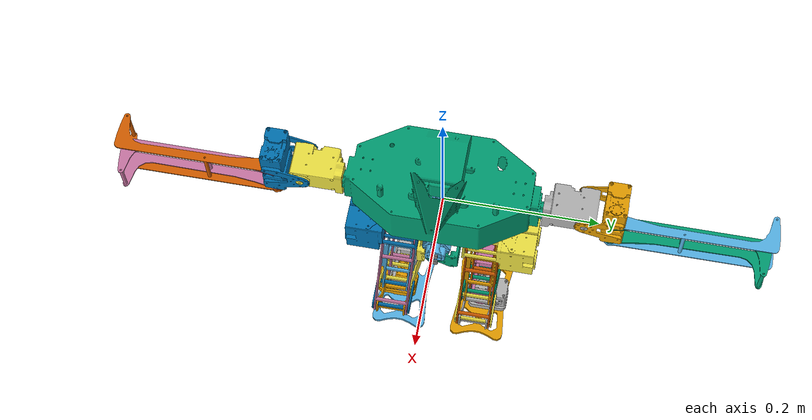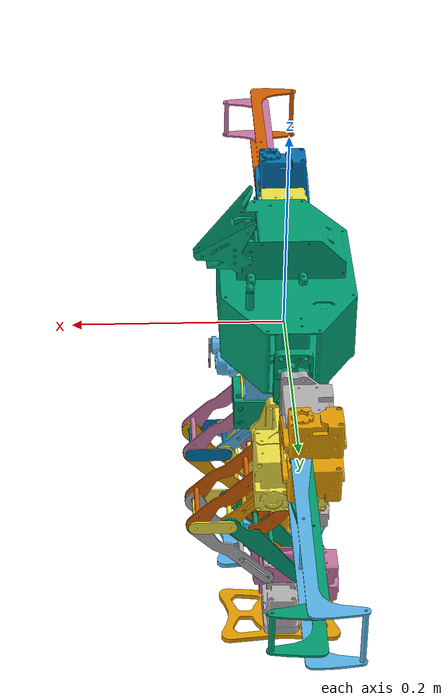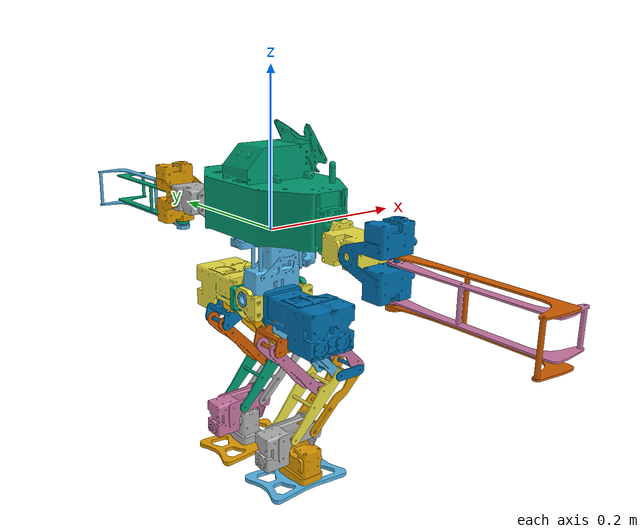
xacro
<?xml version="1.0"?>
<robot name="kuroko" xmlns:xacro="http://www.ros.org/wiki/xacro">
  <xacro:arg name="gazebo" default="false"/>
  <xacro:arg name="box_visual" default="false"/>
  <xacro:arg name="gazebo_motor_model" default="dc"/>
  <xacro:arg name="gazebo_hw_interface" default="position"/>

  <xacro:property name="XACRO_DIR" value="/home/nyx/lib/isaaclab/kuroko_ros/kuroko_description/xacro" />
  <xacro:property name="MESH_DIR" value="/home/nyx/lib/isaaclab/kuroko_ros/kuroko_description/meshes" />

  <xacro:include filename="${XACRO_DIR}/physics/box_physics.xacro"/>
  <xacro:include filename="${XACRO_DIR}/physics/gazebo_passive_joint.xacro"/>
  <xacro:include filename="${XACRO_DIR}/kuroko/parts/body.xacro"/>
  <xacro:include filename="${XACRO_DIR}/kuroko/transmission/body.gazebo"/>
  <xacro:include filename="${XACRO_DIR}/kuroko/parts/arm_r.xacro"/>
  <xacro:include filename="${XACRO_DIR}/kuroko/transmission/arm_r.gazebo"/>
  <xacro:include filename="${XACRO_DIR}/kuroko/parts/arm_l.xacro"/>
  <xacro:include filename="${XACRO_DIR}/kuroko/transmission/arm_l.gazebo"/>
  <xacro:include filename="${XACRO_DIR}/kuroko/parts/leg_r.xacro"/>
  <xacro:include filename="${XACRO_DIR}/kuroko/transmission/leg_r.gazebo"/>
  <xacro:include filename="${XACRO_DIR}/kuroko/parts/leg_l.xacro"/>
  <xacro:include filename="${XACRO_DIR}/kuroko/transmission/leg_l.gazebo"/>
  <xacro:include filename="${XACRO_DIR}/sensors/range/tfluna.xacro"/>
  <xacro:include filename="${XACRO_DIR}/sensors/imu/imu_n100mini.xacro"/>
  <xacro:include filename="${XACRO_DIR}/sensors/camera/usb_camera.xacro"/>

  <!-- MACRO:Loading Gazebo Controllers for joints -->
  <xacro:macro name="gazebo_plugin_xacro" params="gazebo_motor_model">
    <xacro:if value="${gazebo_motor_model=='default'}">
      <gazebo>
        <plugin name="gazebo_ros_control" filename="libgazebo_ros_control.so">
          <robotNamespace>kuroko</robotNamespace>
          <robotSimType>gazebo_ros_control/DefaultRobotHWSim</robotSimType>
          <legacyModeNS>true</legacyModeNS>
        </plugin>
      </gazebo>
    </xacro:if>
    <xacro:if value="${gazebo_motor_model=='dc'}">
      <gazebo>
        <plugin name="gazebo_ros_control" filename="libgazebo_dc_motor.so">
          <robotNamespace>kuroko</robotNamespace>
          <robotSimType>gazebo_dc_motor/DefaultRobotHWSim</robotSimType>
          <legacyModeNS>false</legacyModeNS>
        </plugin>
      </gazebo>
    </xacro:if>
  </xacro:macro>

  <!-- MACRO:Setting up a Robot Model -->
  <xacro:macro name="kuroko_xacro" params="gazebo box_visual gazebo_hw_interface">
    <link name="body_link"/>
    <joint name="root_joint" type="fixed">
      <parent link="body_link"/>
      <child link="waist_link"/>
      <origin xyz="0 0 0" rpy="0 0 0"/>
    </joint>
    <xacro:body_xacro box_visual="$(arg box_visual)"/>
    <xacro:body_gazebo gazebo_hw_interface="${gazebo_hw_interface}"/>
    <xacro:arm_r_xacro box_visual="$(arg box_visual)"/>
    <xacro:arm_r_gazebo gazebo_hw_interface="${gazebo_hw_interface}"/>
    <xacro:arm_l_xacro box_visual="$(arg box_visual)"/>
    <xacro:arm_l_gazebo gazebo_hw_interface="${gazebo_hw_interface}"/>
    <xacro:leg_r_xacro gazebo="$(arg gazebo)" box_visual="$(arg box_visual)"/>
    <xacro:leg_r_gazebo gazebo_hw_interface="${gazebo_hw_interface}"/>
    <xacro:leg_l_xacro gazebo="$(arg gazebo)" box_visual="$(arg box_visual)"/>
    <xacro:leg_l_gazebo gazebo_hw_interface="${gazebo_hw_interface}"/>
    <xacro:imu_n100mini parent="waist_link" name="imu">
      <origin xyz="-0.04 0 -0.01" rpy="0 0 0"/>
    </xacro:imu_n100mini>
    <xacro:usb_camera parent="waist_link" name="camera">
      <origin xyz="0.07 0 -0.026" rpy="0 0 0"/>
    </xacro:usb_camera>
    <xacro:tfluna parent="waist_link" name="tfluna" ros_topic="/kuroko/sensors/range">
      <origin xyz="0.07 0 -0.044" rpy="0 0 0"/>
    </xacro:tfluna>
  </xacro:macro>

  <!-- Load Macros -->
  <xacro:kuroko_xacro gazebo="$(arg gazebo)" box_visual="$(arg box_visual)"
    gazebo_hw_interface="$(arg gazebo_hw_interface)"/>
  <xacro:gazebo_plugin_xacro gazebo_motor_model="$(arg gazebo_motor_model)"/>

</robot>

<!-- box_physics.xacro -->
<robot xmlns:xacro="http://www.ros.org/wiki/xacro">
  <xacro:macro name="box_inertial" params="xyz:='0 0 0' rpy:='0 0 0' size mass inertia_min:=0.0001">
    <xacro:property name="d" value="${float(size.split()[0])}"/>
    <xacro:property name="w" value="${float(size.split()[1])}"/>
    <xacro:property name="h" value="${float(size.split()[2])}"/>
    <xacro:property name="ixx" value="${mass * (w ** 2 + h ** 2) / 12}"/>
    <xacro:property name="iyy" value="${mass * (d ** 2 + h ** 2) / 12}"/>
    <xacro:property name="izz" value="${mass * (w ** 2 + d ** 2) / 12}"/>
    <xacro:if value="${int(inertia_min/ixx)}">
      <xacro:property name="ixx" value="${inertia_min}"/>
    </xacro:if>
    <xacro:if value="${int(inertia_min/iyy)}">
      <xacro:property name="iyy" value="${inertia_min}"/>
    </xacro:if>
    <xacro:if value="${int(inertia_min/izz)}">
      <xacro:property name="izz" value="${inertia_min}"/>
    </xacro:if>
    <inertial>
      <origin xyz="${xyz}" rpy="${rpy}"/>
      <mass value="${mass}"/>
      <inertia ixx="${ixx}"
        ixy="0.0" iyy="${iyy}"
        ixz="0.0" iyz="0.0" izz="${izz}"/>
    </inertial>
  </xacro:macro>
  <xacro:macro name="box_collision" params="xyz:='0 0 0' rpy:='0 0 0' size">
    <collision>
      <origin xyz="${xyz}" rpy="${rpy}"/>
      <geometry>
        <box size="${size}"/>
      </geometry>
    </collision>
  </xacro:macro>
  <xacro:macro name="box_visual" params="xyz:='0 0 0' rpy:='0 0 0' size material_name:='gray' color:='0.5 0.5 0.5 1'">
    <visual>
      <origin xyz="${xyz}" rpy="${rpy}"/>
      <geometry>
        <box size="${size}"/>
      </geometry>
      <material name="${material_name}">
        <color rgba="${color}"/>
      </material>
    </visual>
  </xacro:macro>
</robot>

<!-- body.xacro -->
<robot xmlns:xacro="http://www.ros.org/wiki/xacro">
  <xacro:macro name="body_xacro" params="box_visual:=false">
    <!-- waist -->
    <link name="waist_link">
      <xacro:unless value="$(arg box_visual)">
        <visual>
          <origin xyz="0 0 0" rpy="0 0 0"/>
          <geometry>
            <mesh filename="${MESH_DIR}/kuroko/stl/waist.stl"/>
          </geometry>
        </visual>
      </xacro:unless>
      <xacro:if value="$(arg box_visual)">
        <xacro:box_visual xyz="0.0084 0.0000 -0.0483" rpy="0 0 0" size="0.1247 0.0560 0.0965"/>
      </xacro:if>
      <xacro:box_collision xyz="0.0084 0.0000 -0.0483" rpy="0 0 0" size="0.1247 0.0560 0.0965"/>
      <xacro:box_inertial xyz="0.0084 0.0000 -0.0483" rpy="0 0 0" size="0.1247 0.0560 0.0965" mass="0.388"/>
    </link>
    <!-- Joint1 -->
    <joint name="chest" type="revolute">
      <parent link="waist_link"/>
      <child link="chest_link"/>
      <origin xyz="0 0 0" rpy="0 0 0"/>
      <axis xyz="0 0 1"/>
      <limit effort="3.1" lower="-3.14" upper="3.14" velocity="6.5"/>
      <dynamics damping="0.477" friction="0.0"/>
    </joint>
    <!-- chest -->
    <link name="chest_link">
      <xacro:unless value="$(arg box_visual)">
        <visual>
          <origin xyz="0 0 0" rpy="0 0 0"/>
          <geometry>
            <mesh filename="${MESH_DIR}/kuroko/stl/chest.stl"/>
          </geometry>
        </visual>
      </xacro:unless>
      <xacro:if value="$(arg box_visual)">
        <xacro:box_visual xyz="0.0120 0.0000 0.0635" rpy="0 0 0" size="0.1480 0.2560 0.1364"/>
      </xacro:if>
      <xacro:box_collision xyz="0.0120 0.0000 0.0635" rpy="0 0 0" size="0.1480 0.2560 0.1364"/>
      <xacro:box_inertial xyz="0.0120 0.0000 0.0635" rpy="0 0 0" size="0.1480 0.2560 0.1364" mass="0.806"/>
    </link>
  </xacro:macro>
</robot>

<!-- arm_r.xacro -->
<robot xmlns:xacro="http://www.ros.org/wiki/xacro">
  <xacro:macro name="arm_r_xacro" params="box_visual:=false">
    <!-- Link conencts from body. Shoulder first. -->
    <joint name="shoulder_r_pitch" type="revolute">
      <parent link="chest_link"/>
      <child link="shoulder_r_pitch_link"/>
      <origin xyz="0 -0.128 0.01275" rpy="0 0 0"/>
      <axis xyz="0 -1 0"/>
      <limit effort="3.1" lower="-3.14" upper="3.14" velocity="6.5"/>
      <dynamics damping="0.477" friction="0.0"/>
    </joint>
    <link name="shoulder_r_pitch_link">
      <xacro:unless value="$(arg box_visual)">
        <visual>
          <origin xyz="0 0 0" rpy="0 0 0"/>
          <geometry>
            <mesh filename="${MESH_DIR}/kuroko/stl/shoulder_r_pitch.stl"/>
          </geometry>
        </visual>
      </xacro:unless>
      <xacro:if value="$(arg box_visual)">
        <xacro:box_visual xyz="-0.0096 -0.0340 0.0000" rpy="0 0 0" size="0.0513 0.0680 0.0475"/>
      </xacro:if>
      <xacro:box_collision xyz="-0.0096 -0.0340 0.0000" rpy="0 0 0" size="0.0513 0.0680 0.0475"/>
      <xacro:box_inertial xyz="-0.0096 -0.0340 0.0000" rpy="0 0 0" size="0.0513 0.0680 0.0475" mass="0.165"/>
    </link>
    <joint name="shoulder_r_roll" type="revolute">
      <parent link="shoulder_r_pitch_link"/>
      <child link="shoulder_r_roll_link"/>
      <origin xyz="0 -0.05425 0" rpy="-1.5708 0 0"/>
      <axis xyz="1 0 0"/>
      <limit effort="8.9" lower="-3.14" upper="3.14" velocity="6.9"/>
      <dynamics damping="1.29" friction="0.0"/>
    </joint>
    <link name="shoulder_r_roll_link">
      <xacro:unless value="$(arg box_visual)">
        <visual>
          <origin xyz="0 0 0" rpy="0 0 0"/>
          <geometry>
            <mesh filename="${MESH_DIR}/kuroko/stl/shoulder_r_roll.stl"/>
          </geometry>
        </visual>
      </xacro:unless>
      <xacro:if value="$(arg box_visual)">
        <xacro:box_visual xyz="-0.0108 0.0000 -0.0186" rpy="0 0 0" size="0.0530 0.0860 0.0633"/>
      </xacro:if>
      <xacro:box_collision xyz="-0.0108 0.0000 -0.0186" rpy="0 0 0" size="0.0530 0.0860 0.0633"/>
      <xacro:box_inertial xyz="-0.0108 0.0000 -0.0186" rpy="0 0 0" size="0.0530 0.0860 0.0633" mass="0.183"/>
    </link>
    <joint name="elbow_r_front" type="revolute">
      <parent link="shoulder_r_roll_link"/>
      <child link="elbow_r_front_link"/>
      <origin xyz="0 0.023 -0.036" rpy="0 0 0"/>
      <axis xyz="0 1 0"/>
      <limit effort="3.1" lower="-2.6180" upper="2.6180" velocity="6.5"/>
      <dynamics damping="0.477" friction="0.0"/>
    </joint>
    <link name="elbow_r_front_link">
      <xacro:unless value="$(arg box_visual)">
        <visual>
          <origin xyz="0 0 0" rpy="0 0 0"/>
          <geometry>
            <mesh filename="${MESH_DIR}/kuroko/stl/elbow_r_front.stl"/>
          </geometry>
        </visual>
      </xacro:unless>
      <xacro:if value="$(arg box_visual)">
        <xacro:box_visual xyz="0.0043 0 -0.104" rpy="0 0 0" size="0.01085 0.058 0.208"/>
        <xacro:box_visual xyz="-0.0206 0 -0.201" rpy="0 0 0" size="0.039 0.058 0.014"/>
      </xacro:if>
      <xacro:box_collision xyz="0.0043 0 -0.104" rpy="0 0 0" size="0.01085 0.058 0.208"/>
      <xacro:box_collision xyz="-0.0206 0 -0.201" rpy="0 0 0" size="0.039 0.058 0.014"/>
      <xacro:box_inertial xyz="0.0043 0 -0.104" rpy="0 0 0" size="0.044 0.058 0.208" mass="0.032"/>
    </link>
    <joint name="elbow_r_rear" type="revolute">
      <parent link="shoulder_r_roll_link"/>
      <child link="elbow_r_rear_link"/>
      <origin xyz="0 0.024 -0.036" rpy="0 0 0"/>
      <axis xyz="0 -1 0"/>
      <limit effort="3.1" lower="-2.6180" upper="2.6180" velocity="6.5"/>
      <dynamics damping="0.477" friction="0.0"/>
    </joint>
    <link name="elbow_r_rear_link">
      <xacro:unless value="$(arg box_visual)">
        <visual>
          <origin xyz="0 0 0" rpy="0 0 0"/>
          <geometry>
            <mesh filename="${MESH_DIR}/kuroko/stl/elbow_r_rear.stl"/>
          </geometry>
        </visual>
      </xacro:unless>
      <xacro:if value="$(arg box_visual)">
        <xacro:box_visual xyz="-0.0043 0 -0.1" rpy="0 0 0" size="0.01085 0.044 0.2"/>
        <xacro:box_visual xyz="0.0206 0 -0.193" rpy="0 0 0" size="0.039 0.044 0.014"/>
      </xacro:if>
      <xacro:box_collision xyz="-0.0043 0 -0.1" rpy="0 0 0" size="0.01085 0.044 0.2"/>
      <xacro:box_collision xyz="0.0206 0 -0.193" rpy="0 0 0" size="0.039 0.044 0.014"/>
      <xacro:box_inertial xyz="-0.0043 0 -0.1" rpy="0 0 0" size="0.044 0.044 0.2" mass="0.031"/>
    </link>
  </xacro:macro>
</robot>

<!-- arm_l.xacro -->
<robot xmlns:xacro="http://www.ros.org/wiki/xacro">
  <xacro:macro name="arm_l_xacro" params="box_visual:=false">
    <!-- Link conencts from body. Shoulder first. -->
    <joint name="shoulder_l_pitch" type="revolute">
      <parent link="chest_link"/>
      <child link="shoulder_l_pitch_link"/>
      <origin xyz="0 0.128 0.01275" rpy="0 0 0"/>
      <axis xyz="0 1 0"/>
      <limit effort="3.1" lower="-3.14" upper="3.14" velocity="6.5"/>
      <dynamics damping="0.477" friction="0.0"/>
    </joint>
    <link name="shoulder_l_pitch_link">
      <xacro:unless value="$(arg box_visual)">
        <visual>
          <origin xyz="0 0 0" rpy="0 0 0"/>
          <geometry>
            <mesh filename="${MESH_DIR}/kuroko/stl/shoulder_l_pitch.stl"/>
          </geometry>
        </visual>
      </xacro:unless>
      <xacro:if value="$(arg box_visual)">
        <xacro:box_visual xyz="-0.0096 0.0340 0.0000" rpy="0 0 0" size="0.0513 0.0680 0.0475"/>
      </xacro:if>
      <xacro:box_collision xyz="-0.0096 0.0340 0.0000" rpy="0 0 0" size="0.0513 0.0680 0.0475"/>
      <xacro:box_inertial xyz="-0.0096 0.0340 0.0000" rpy="0 0 0" size="0.0513 0.0680 0.0475" mass="0.165"/>
    </link>
    <joint name="shoulder_l_roll" type="revolute">
      <parent link="shoulder_l_pitch_link"/>
      <child link="shoulder_l_roll_link"/>
      <origin xyz="0 0.05425 0" rpy="1.5708 0 0"/>
      <axis xyz="1 0 0"/>
      <limit effort="8.9" lower="-3.14" upper="3.14" velocity="6.9"/>
      <dynamics damping="1.29" friction="0.0"/>
    </joint>
    <link name="shoulder_l_roll_link">
      <xacro:unless value="$(arg box_visual)">
        <visual>
          <origin xyz="0 0 0" rpy="0 0 0"/>
          <geometry>
            <mesh filename="${MESH_DIR}/kuroko/stl/shoulder_l_roll.stl"/>
          </geometry>
        </visual>
      </xacro:unless>
      <xacro:if value="$(arg box_visual)">
        <xacro:box_visual xyz="-0.0108 0.0000 -0.0186" rpy="0 0 0" size="0.0530 0.0860 0.0633"/>
      </xacro:if>
      <xacro:box_collision xyz="-0.0108 0.0000 -0.0186" rpy="0 0 0" size="0.0530 0.0860 0.0633"/>
      <xacro:box_inertial xyz="-0.0108 0.0000 -0.0186" rpy="0 0 0" size="0.0530 0.0860 0.0633" mass="0.183"/>
    </link>
    <joint name="elbow_l_front" type="revolute">
      <parent link="shoulder_l_roll_link"/>
      <child link="elbow_l_front_link"/>
      <origin xyz="0 -0.023 -0.036" rpy="0 0 0"/>
      <axis xyz="0 -1 0"/>
      <limit effort="3.1" lower="-2.6180" upper="2.6180" velocity="6.5"/>
      <dynamics damping="0.477" friction="0.0"/>
    </joint>
    <link name="elbow_l_front_link">
      <xacro:unless value="$(arg box_visual)">
        <visual>
          <origin xyz="0 0 0" rpy="0 0 0"/>
          <geometry>
            <mesh filename="${MESH_DIR}/kuroko/stl/elbow_l_front.stl"/>
          </geometry>
        </visual>
      </xacro:unless>
      <xacro:if value="$(arg box_visual)">
        <xacro:box_visual xyz="0.0043 0 -0.104" rpy="0 0 0" size="0.01085 0.058 0.208"/>
        <xacro:box_visual xyz="-0.0206 0 -0.201" rpy="0 0 0" size="0.039 0.058 0.014"/>
      </xacro:if>
      <xacro:box_collision xyz="0.0043 0 -0.104" rpy="0 0 0" size="0.01085 0.058 0.208"/>
      <xacro:box_collision xyz="-0.0206 0 -0.201" rpy="0 0 0" size="0.039 0.058 0.014"/>
      <xacro:box_inertial xyz="0.0043 0 -0.104" rpy="0 0 0" size="0.044 0.058 0.208" mass="0.032"/>
    </link>
    <joint name="elbow_l_rear" type="revolute">
      <parent link="shoulder_l_roll_link"/>
      <child link="elbow_l_rear_link"/>
      <origin xyz="0 -0.024 -0.036" rpy="0 0 0"/>
      <axis xyz="0 1 0"/>
      <limit effort="3.1" lower="-2.6180" upper="2.6180" velocity="6.5"/>
      <dynamics damping="0.477" friction="0.0"/>
    </joint>
    <link name="elbow_l_rear_link">
      <xacro:unless value="$(arg box_visual)">
        <visual>
          <origin xyz="0 0 0" rpy="0 0 0"/>
          <geometry>
            <mesh filename="${MESH_DIR}/kuroko/stl/elbow_l_rear.stl"/>
          </geometry>
        </visual>
      </xacro:unless>
      <xacro:if value="$(arg box_visual)">
        <xacro:box_visual xyz="-0.0043 0 -0.1" rpy="0 0 0" size="0.01085 0.044 0.2"/>
        <xacro:box_visual xyz="0.0206 0 -0.193" rpy="0 0 0" size="0.039 0.044 0.014"/>
      </xacro:if>
      <xacro:box_collision xyz="-0.0043 0 -0.1" rpy="0 0 0" size="0.01085 0.044 0.2"/>
      <xacro:box_collision xyz="0.0206 0 -0.193" rpy="0 0 0" size="0.039 0.044 0.014"/>
      <xacro:box_inertial xyz="-0.0043 0 -0.1" rpy="0 0 0" size="0.044 0.044 0.2" mass="0.031"/>
    </link>
  </xacro:macro>
</robot>

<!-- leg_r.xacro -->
<robot xmlns:xacro="http://www.ros.org/wiki/xacro">
  <xacro:macro name="leg_r_xacro" params="gazebo:=false box_visual:=false">
    <!-- Link conencts from body. Hip first. -->
    <joint name="hip_r_roll" type="revolute">
      <parent link="waist_link"/>
      <child link="hip_r_roll_link"/>
      <origin xyz="0 0 -0.08425" rpy="0 0 0"/>
      <axis xyz="1 0 0"/>
      <limit effort="3.1" lower="-0.5550" upper="1.8640" velocity="6.5"/>
      <dynamics damping="0.477" friction="0.0"/>
    </joint>
    <link name="hip_r_roll_link">
      <xacro:unless value="$(arg box_visual)">
        <visual>
          <origin xyz="0 0 0" rpy="0 0 0"/>
          <geometry>
            <mesh filename="${MESH_DIR}/kuroko/stl/hip_r_roll.stl"/>
          </geometry>
        </visual>
      </xacro:unless>
      <xacro:if value="$(arg box_visual)">
        <xacro:box_visual xyz="0.00125 -0.0065 -0.004125" rpy="0 0 0" size="0.092 0.041 0.03625"/>
      </xacro:if>
      <xacro:box_collision xyz="0.00125 -0.0065 -0.004125" rpy="0 0 0" size="0.092 0.041 0.03625"/>
      <xacro:box_inertial xyz="0.00125 -0.0065 -0.004125" rpy="0 0 0" size="0.092 0.041 0.03625"
        mass="0.026"/>
    </link>
    <joint name="hip_r_pitch" type="revolute">
      <parent link="hip_r_roll_link"/>
      <child link="hip_r_pitch_link"/>
      <origin xyz="0 -0.027 0" rpy="0 0 0"/>
      <axis xyz="0 -1 0"/>
      <limit effort="3.1" lower="-3.1" upper="3.1" velocity="6.5"/>
      <dynamics damping="0.477" friction="0.0"/>
    </joint>
    <link name="hip_r_pitch_link">
      <xacro:unless value="$(arg box_visual)">
        <visual>
          <origin xyz="0 0 0" rpy="0 0 0"/>
          <geometry>
            <mesh filename="${MESH_DIR}/kuroko/stl/hip_r_pitch.stl"/>
          </geometry>
        </visual>
      </xacro:unless>
      <xacro:if value="$(arg box_visual)">
        <xacro:box_visual xyz="-0.00175 -0.049 -0.015" rpy="0 0 0" size="0.067 0.098 0.0585"/>
      </xacro:if>
      <xacro:box_collision xyz="-0.00175 -0.049 -0.015" rpy="0 0 0" size="0.067 0.098 0.0585"/>
      <xacro:box_inertial xyz="-0.00175 -0.049 -0.015" rpy="0 0 0" size="0.067 0.098 0.0585"
        mass="0.478"/>
    </link>

    <joint name="shin_r_active" type="revolute">
      <parent link="hip_r_pitch_link"/>
      <child link="shin_r_active_link"/>
      <origin xyz="-0.0185 -0.02925 -0.0305" rpy="0 1.047197551 0"/>
      <axis xyz="0 1 0"/>
      <limit effort="8.9" lower="-1.8588" upper="0.4974" velocity="6.9"/>
      <dynamics damping="1.29" friction="0.0"/>
    </joint>
    <link name="shin_r_active_link">
      <xacro:unless value="$(arg box_visual)">
        <visual>
          <origin xyz="0 0 0" rpy="0 0 0"/>
          <geometry>
            <mesh filename="${MESH_DIR}/kuroko/stl/shin_r_active.stl"/>
          </geometry>
        </visual>
      </xacro:unless>
      <xacro:if value="$(arg box_visual)">
        <xacro:box_visual xyz="-0.004745 0 -0.015" rpy="0 0 0" size="0.02349 0.0445 0.044"/>
      </xacro:if>
      <xacro:box_collision xyz="-0.004745 0 -0.015" rpy="0 0 0" size="0.02349 0.0445 0.044"/>
      <xacro:box_inertial xyz="-0.004745 0 -0.015" rpy="0 0 0" size="0.02349 0.0445 0.044"
        mass="0.008"/>
    </link>

    <joint name="thigh_r_active" type="revolute">
      <parent link="hip_r_pitch_link"/>
      <child link="thigh_r_active_link"/>
      <origin xyz="0.015 -0.02925 -0.0305" rpy="0 -0.785398163 0"/>
      <axis xyz="0 1 0"/>
      <limit effort="8.9" lower="-0.4974" upper="1.8588" velocity="6.9"/>
      <dynamics damping="1.29" friction="0.0"/>
    </joint>
    <link name="thigh_r_active_link">
      <xacro:unless value="$(arg box_visual)">
        <visual>
          <origin xyz="0 0 0" rpy="0 0 0"/>
          <geometry>
            <mesh filename="${MESH_DIR}/kuroko/stl/thigh_r_active.stl"/>
          </geometry>
        </visual>
      </xacro:unless>
      <xacro:if value="$(arg box_visual)">
        <xacro:box_visual xyz="0 0 -0.05" rpy="0 0 0" size="0.014 0.0445 0.114"/>
      </xacro:if>
      <xacro:box_collision xyz="0 0 -0.05" rpy="0 0 0" size="0.014 0.0445 0.114"/>
      <xacro:box_inertial xyz="0 0 -0.05" rpy="0 0 0" size="0.014 0.0445 0.114" mass="0.012"/>
    </link>
    <xacro:unless value="$(arg gazebo)">
      <joint name="shin_r_front_mimic" type="revolute">
        <parent link="thigh_r_active_link"/>
        <child link="shin_r_front_mimic_link"/>
        <origin xyz="0 0 -0.1" rpy="0 0.785398163 0"/>
        <axis xyz="0 1 0"/>
        <limit effort="0" lower="-3.1416" upper="3.1416" velocity="1000"/>
        <dynamics damping="0.0" friction="0.0"/>
        <mimic joint="thigh_r_active" multiplier="-1" offset="0"/>
      </joint>
      <link name="shin_r_front_mimic_link"/>
      <joint name="shin_r_front_passive" type="revolute">
        <parent link="shin_r_front_mimic_link"/>
        <child link="shin_r_front_passive_link"/>
        <origin xyz="0 0 0" rpy="0 0.785398163 0"/>
        <axis xyz="0 1 0"/>
        <limit effort="0" lower="-3.1416" upper="3.1416" velocity="1000"/>
        <dynamics damping="0.0" friction="0.0"/>
        <mimic joint="shin_r_active" multiplier="1" offset="0"/>
      </joint>
    </xacro:unless>
    <xacro:if value="$(arg gazebo)">
      <joint name="shin_r_front_passive" type="revolute">
        <parent link="thigh_r_active_link"/>
        <child link="shin_r_front_passive_link"/>
        <origin xyz="0 0 -0.1" rpy="0 1.570796327 0"/>
        <axis xyz="0 1 0"/>
        <limit effort="0" lower="-1.570796327" upper="0.9948" velocity="1000.0"/>
        <dynamics damping="0.0" friction="0.0"/>
      </joint>
    </xacro:if>
    <link name="shin_r_front_passive_link">
      <xacro:unless value="$(arg box_visual)">
        <visual>
          <origin xyz="0 0 0" rpy="0 0 0"/>
          <geometry>
            <mesh filename="${MESH_DIR}/kuroko/stl/shin_r_front_passive.stl"/>
          </geometry>
        </visual>
      </xacro:unless>
      <xacro:if value="$(arg box_visual)">
        <xacro:box_visual xyz="0 0 -0.05" rpy="0 0 0" size="0.014 0.0445 0.114"/>
      </xacro:if>
      <xacro:box_collision xyz="0 0 -0.05" rpy="0 0 0" size="0.014 0.0385 0.114"/>
      <xacro:box_inertial xyz="0 0 -0.05" rpy="0 0 0" size="0.014 0.0385 0.114" mass="0.013"/>
    </link>

    <joint name="thigh_r_middle_passive" type="revolute">
      <parent link="hip_r_pitch_link"/>
      <child link="thigh_r_middle_passive_link"/>
      <origin xyz="-0.0185 -0.02925 -0.0305" rpy="0 -0.785398163 0"/>
      <axis xyz="0 1 0"/>
      <limit effort="0" lower="-0.4974" upper="1.8588" velocity="1000"/>
      <dynamics damping="0" friction="0"/>
      <mimic joint="thigh_r_active" multiplier="1" offset="0"/>
    </joint>
    <link name="thigh_r_middle_passive_link">
      <xacro:unless value="$(arg box_visual)">
        <visual>
          <origin xyz="0 0 0" rpy="0 0 0"/>
          <geometry>
            <mesh filename="${MESH_DIR}/kuroko/stl/thigh_r_middle_passive.stl"/>
          </geometry>
        </visual>
      </xacro:unless>
      <xacro:if value="$(arg box_visual)">
        <xacro:box_visual xyz="0 0 -0.05" rpy="0 0 0" size="0.014 0.0345 0.114"/>
      </xacro:if>
      <xacro:box_collision xyz="0 0 -0.05" rpy="0 0 0" size="0.014 0.0345 0.114"/>
      <xacro:box_inertial xyz="0 0 -0.05" rpy="0 0 0" size="0.014 0.0345 0.114" mass="0.012"/>
    </link>
    <xacro:unless value="$(arg gazebo)">
      <joint name="shin_r_rear_mimic" type="revolute">
        <parent link="thigh_r_middle_passive_link"/>
        <child link="shin_r_rear_mimic_link"/>
        <origin xyz="0 0 -0.1" rpy="0 0.785398163 0"/>
        <axis xyz="0 1 0"/>
        <limit effort="0" lower="-3.1416" upper="3.1416" velocity="1000"/>
        <dynamics damping="0.0" friction="0.0"/>
        <mimic joint="thigh_r_active" multiplier="-1" offset="0"/>
      </joint>
      <link name="shin_r_rear_mimic_link"/>
      <joint name="shin_r_rear_passive" type="revolute">
        <parent link="shin_r_rear_mimic_link"/>
        <child link="shin_r_rear_passive_link"/>
        <origin xyz="0 0 0" rpy="0 0.785398163 0"/>
        <axis xyz="0 1 0"/>
        <limit effort="0" lower="-3.1416" upper="3.1416" velocity="1000"/>
        <dynamics damping="0.0" friction="0.0"/>
        <mimic joint="shin_r_active" multiplier="1" offset="0"/>
      </joint>
    </xacro:unless>
    <xacro:if value="$(arg gazebo)">
      <joint name="shin_r_rear_passive" type="revolute">
        <parent link="thigh_r_middle_passive_link"/>
        <child link="shin_r_rear_passive_link"/>
        <origin xyz="0 0 -0.1" rpy="0 1.570796327 0"/>
        <axis xyz="0 1 0"/>
        <limit effort="0" lower="-1.570796327" upper="0.9948" velocity="1000.0"/>
        <dynamics damping="0.0" friction="0.0"/>
      </joint>
    </xacro:if>
    <link name="shin_r_rear_passive_link">
      <xacro:unless value="$(arg box_visual)">
        <visual>
          <origin xyz="0 0 0" rpy="0 0 0"/>
          <geometry>
            <mesh filename="${MESH_DIR}/kuroko/stl/shin_r_rear_passive.stl"/>
          </geometry>
        </visual>
      </xacro:unless>
      <xacro:if value="$(arg box_visual)">
        <xacro:box_visual xyz="0 0 -0.05" rpy="0 0 0" size="0.014 0.0445 0.114"/>
      </xacro:if>
      <xacro:box_collision xyz="0 0 -0.05" rpy="0 0 0" size="0.014 0.0445 0.114"/>
      <xacro:box_inertial xyz="0 0 -0.05" rpy="0 0 0" size="0.014 0.0445 0.114" mass="0.016"/>
    </link>

    <joint name="knee_r_rear_passive" type="revolute">
      <parent link="shin_r_rear_passive_link"/>
      <child link="knee_r_passive_link"/>
      <origin xyz="0 0 0" rpy="0 -0.785398164 0"/>
      <axis xyz="0 1 0"/>
      <limit effort="0" lower="-3.141592654" upper="3.141592654" velocity="1000.0"/>
      <dynamics damping="0.0" friction="0.0"/>
      <mimic joint="shin_r_active" multiplier="-1" offset="0"/>
    </joint>
    <link name="knee_r_passive_link">
      <xacro:unless value="$(arg box_visual)">
        <visual>
          <origin xyz="0.0335 0 0" rpy="0 0 0"/>
          <geometry>
            <mesh filename="${MESH_DIR}/kuroko/stl/knee_r_passive.stl"/>
          </geometry>
        </visual>
      </xacro:unless>
      <xacro:if value="$(arg box_visual)">
        <xacro:box_visual xyz="0.01675 0 0" rpy="0 0 0" size="0.0475 0.0505 0.014"/>
      </xacro:if>
      <xacro:box_collision xyz="0.01675 0 0" rpy="0 0 0" size="0.0475 0.0505 0.014"/>
      <xacro:box_inertial xyz="0.01675 0 0" rpy="0 0 0" size="0.0475 0.0505 0.014" mass="0.007"/>
    </link>
    <xacro:if value="$(arg gazebo)">
      <xacro:gazebo_poassive_joint name="knee_r_front_passive_loop" xyz="0.0335 0 0"
        parent="knee_r_passive_link" child="thigh_r_active_link" axis="0 1 0" lower="-1.8588" upper="0.4974"/>
    </xacro:if>

    <xacro:unless value="$(arg gazebo)">
      <joint name="thigh_r_rear_mimic" type="revolute">
        <parent link="shin_r_rear_passive_link"/>
        <child link="thigh_r_rear_mimic_link"/>
        <origin xyz="-0.00776457 0 -0.0289778" rpy="0 -0.785398163 0"/>
        <axis xyz="0 1 0"/>
        <limit effort="0" lower="-3.1416" upper="3.1416" velocity="1000"/>
        <dynamics damping="0.0" friction="0.0"/>
        <mimic joint="thigh_r_active" multiplier="1" offset="0"/>
      </joint>
      <link name="thigh_r_rear_mimic_link"/>
      <joint name="thigh_r_rear_passive" type="revolute">
        <parent link="thigh_r_rear_mimic_link"/>
        <child link="thigh_r_rear_passive_link"/>
        <origin xyz="0 0 0" rpy="0 -0.785398163 0"/>
        <axis xyz="0 1 0"/>
        <limit effort="0" lower="-3.1416" upper="3.1416" velocity="1000"/>
        <dynamics damping="0.0" friction="0.0"/>
        <mimic joint="shin_r_active" multiplier="-1" offset="0"/>
      </joint>
    </xacro:unless>
    <xacro:if value="$(arg gazebo)">
      <joint name="thigh_r_rear_passive" type="revolute">
        <parent link="shin_r_rear_passive_link"/>
        <child link="thigh_r_rear_passive_link"/>
        <origin xyz="-0.00776457 0 -0.0289778" rpy="0 -1.570796327 0"/>
        <axis xyz="0 1 0"/>
        <limit effort="0" lower="-0.9948" upper="1.570796327" velocity="1000.0"/>
        <dynamics damping="0.0" friction="0.0"/>
      </joint>
    </xacro:if>
    <link name="thigh_r_rear_passive_link">
      <xacro:unless value="$(arg box_visual)">
        <visual>
          <origin xyz="0 0 0.1" rpy="0 0 0"/>
          <geometry>
            <mesh filename="${MESH_DIR}/kuroko/stl/thigh_r_rear_passive.stl"/>
          </geometry>
        </visual>
      </xacro:unless>
      <xacro:if value="$(arg box_visual)">
        <xacro:box_visual xyz="0 0 0.05" rpy="0 0 0" size="0.014 0.0285 0.114"/>
      </xacro:if>
      <xacro:box_collision xyz="0 0 0.05" rpy="0 0 0" size="0.014 0.0285 0.114"/>
      <xacro:box_inertial xyz="0 0 0.05" rpy="0 0 0" size="0.014 0.0285 0.114" mass="0.011"/>
    </link>
    <xacro:if value="$(arg gazebo)">
      <xacro:gazebo_poassive_joint name="thigh_r_rear_passive_loop" xyz="0 0 0.1" rpy="0 1.832597551 0"
        parent="thigh_r_rear_passive_link" child="shin_r_active_link" axis="0 1 0"/>
    </xacro:if>

    <joint name="ankle_r_rear_passive" type="revolute">
      <parent link="shin_r_rear_passive_link"/>
      <child link="ankle_r_rear_passive_link"/>
      <origin xyz="0 0 -0.1" rpy="0 -0.785398163 0"/>
      <axis xyz="0 1 0"/>
      <limit effort="0" lower="-0.4974" upper="1.8588" velocity="1000.0"/>
      <dynamics damping="0.0" friction="0.0"/>
      <mimic joint="shin_r_active" multiplier="-1" offset="0"/>
    </joint>
    <link name="ankle_r_rear_passive_link">
      <xacro:unless value="$(arg box_visual)">
        <visual>
          <origin xyz="0.0335 0 0" rpy="0 0 0"/>
          <geometry>
            <mesh filename="${MESH_DIR}/kuroko/stl/ankle_r_pitch_passive.stl"/>
          </geometry>
        </visual>
      </xacro:unless>
      <xacro:if value="$(arg box_visual)">
        <xacro:box_visual xyz="0.005 0 -0.013" rpy="0 0 0" size="0.0855 0.0325 0.0465"/>
      </xacro:if>
      <xacro:box_collision xyz="0.005 0 -0.013" rpy="0 0 0" size="0.0855 0.0325 0.0465"/>
      <xacro:box_inertial xyz="0.005 0 -0.013" rpy="0 0 0" size="0.0855 0.0325 0.0465"
        mass="0.104"/>
    </link>
    <xacro:if value="$(arg gazebo)">
      <xacro:gazebo_poassive_joint name="ankle_r_front_passive_loop" xyz="0.0335 0 0" rpy="0 -0.785398163 0"
        parent="ankle_r_rear_passive_link" child="shin_r_front_passive_link" axis="0 1 0"/>
    </xacro:if>

    <joint name="ankle_r_roll" type="revolute">
      <parent link="ankle_r_rear_passive_link"/>
      <child link="ankle_r_roll_link"/>
      <origin xyz="0.0185 0 -0.027" rpy="0 0 0"/>
      <axis xyz="1 0 0"/>
      <limit effort="3.1" lower="-0.3704" upper="1.5708" velocity="6.5"/>
      <dynamics damping="0.477" friction="0.0"/>
    </joint>
    <link name="ankle_r_roll_link">
      <xacro:unless value="$(arg box_visual)">
        <visual>
          <origin xyz="0 0 0" rpy="0 0 0"/>
          <geometry>
            <mesh filename="${MESH_DIR}/kuroko/stl/ankle_r_roll.stl"/>
          </geometry>
        </visual>
      </xacro:unless>
      <xacro:if value="$(arg box_visual)">
        <xacro:box_visual xyz="0 -0.009375 -0.01175" rpy="0 0 0" size="0.0365 0.05375 0.043"/>
      </xacro:if>
      <xacro:box_collision xyz="0 -0.009375 -0.01175" rpy="0 0 0" size="0.0365 0.05375 0.043"/>
      <xacro:box_inertial xyz="0 -0.009375 -0.01175" rpy="0 0 0" size="0.0365 0.05375 0.043"
        mass="0.136"/>
    </link>
    <joint name="ankle_r_yaw" type="revolute">
      <parent link="ankle_r_roll_link"/>
      <child link="ankle_r_yaw_link"/>
      <origin xyz="0 0 -0.03825" rpy="0 0 0"/>
      <axis xyz="0 0 -1"/>
      <limit effort="3.1" lower="-3.1" upper="3.1" velocity="6.5"/>
      <dynamics damping="0.477" friction="0.0"/>
    </joint>
    <link name="ankle_r_yaw_link">
      <xacro:unless value="$(arg box_visual)">
        <visual>
          <origin xyz="0 0 0" rpy="0 0 0"/>
          <geometry>
            <mesh filename="${MESH_DIR}/kuroko/stl/ankle_r_yaw.stl"/>
          </geometry>
        </visual>
      </xacro:unless>
      <xacro:if value="$(arg box_visual)">
        <xacro:box_visual xyz="0 0 -0.004" rpy="0 0 0" size="0.12 0.075 0.008"/>
      </xacro:if>
      <xacro:box_collision xyz="0 0 -0.004" rpy="0 0 0" size="0.12 0.075 0.008"/>
      <xacro:box_inertial xyz="0 0 -0.004" rpy="0 0 0" size="0.12 0.075 0.008" mass="0.043"/>
    </link>

  </xacro:macro>
</robot>

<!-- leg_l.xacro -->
<robot xmlns:xacro="http://www.ros.org/wiki/xacro">
  <xacro:macro name="leg_l_xacro" params="gazebo:=false box_visual:=false">
    <!-- Link conencts from body. Hip first. -->
    <joint name="hip_l_roll" type="revolute">
      <parent link="waist_link"/>
      <child link="hip_l_roll_link"/>
      <origin xyz="0 0 -0.08425" rpy="0 0 0"/>
      <axis xyz="-1 0 0"/>
      <limit effort="3.1" lower="-0.5550" upper="1.8640" velocity="6.5"/>
      <dynamics damping="0.477" friction="0.0"/>
    </joint>
    <link name="hip_l_roll_link">
      <xacro:unless value="$(arg box_visual)">
        <visual>
          <origin xyz="0 0 0" rpy="0 0 0"/>
          <geometry>
            <mesh filename="${MESH_DIR}/kuroko/stl/hip_l_roll.stl"/>
          </geometry>
        </visual>
      </xacro:unless>
      <xacro:if value="$(arg box_visual)">
        <xacro:box_visual xyz="0.00125 0.0065 -0.004125" rpy="0 0 0" size="0.092 0.041 0.03625"/>
      </xacro:if>
      <xacro:box_collision xyz="0.00125 0.0065 -0.004125" rpy="0 0 0" size="0.092 0.041 0.03625"/>
      <xacro:box_inertial xyz="0.00125 0.0065 -0.004125" rpy="0 0 0" size="0.092 0.041 0.03625"
        mass="0.026"/>
    </link>
    <joint name="hip_l_pitch" type="revolute">
      <parent link="hip_l_roll_link"/>
      <child link="hip_l_pitch_link"/>
      <origin xyz="0 0.027 0" rpy="0 0 0"/>
      <axis xyz="0 1 0"/>
      <limit effort="3.1" lower="-3.14" upper="3.14" velocity="6.5"/>
      <dynamics damping="0.477" friction="0.0"/>
    </joint>
    <link name="hip_l_pitch_link">
      <xacro:unless value="$(arg box_visual)">
        <visual>
          <origin xyz="0 0 0" rpy="0 0 0"/>
          <geometry>
            <mesh filename="${MESH_DIR}/kuroko/stl/hip_l_pitch.stl"/>
          </geometry>
        </visual>
      </xacro:unless>
      <xacro:if value="$(arg box_visual)">
        <xacro:box_visual xyz="-0.00175 0.049 -0.015" rpy="0 0 0" size="0.067 0.098 0.0585"/>
      </xacro:if>
      <xacro:box_collision xyz="-0.00175 0.049 -0.015" rpy="0 0 0" size="0.067 0.098 0.0585"/>
      <xacro:box_inertial xyz="-0.00175 0.049 -0.015" rpy="0 0 0" size="0.067 0.098 0.0585"
        mass="0.478"/>
    </link>

    <joint name="shin_l_active" type="revolute">
      <parent link="hip_l_pitch_link"/>
      <child link="shin_l_active_link"/>
      <origin xyz="-0.0185 0.02925 -0.0305" rpy="0 1.047197551 0"/>
      <axis xyz="0 -1 0"/>
      <limit effort="8.9" lower="-0.4974" upper="1.8588" velocity="6.9"/>
      <dynamics damping="1.29" friction="0.0"/>
    </joint>
    <link name="shin_l_active_link">
      <xacro:unless value="$(arg box_visual)">
        <visual>
          <origin xyz="0 0 0" rpy="0 0 0"/>
          <geometry>
            <mesh filename="${MESH_DIR}/kuroko/stl/shin_l_active.stl"/>
          </geometry>
        </visual>
      </xacro:unless>
      <xacro:if value="$(arg box_visual)">
        <xacro:box_visual xyz="-0.004745 0 -0.015" rpy="0 0 0" size="0.02349 0.0445 0.044"/>
      </xacro:if>
      <xacro:box_collision xyz="-0.004745 0 -0.015" rpy="0 0 0" size="0.02349 0.0445 0.044"/>
      <xacro:box_inertial xyz="-0.004745 0 -0.015" rpy="0 0 0" size="0.02349 0.0445 0.044"
        mass="0.008"/>
    </link>

    <joint name="thigh_l_active" type="revolute">
      <parent link="hip_l_pitch_link"/>
      <child link="thigh_l_active_link"/>
      <origin xyz="0.015 0.02925 -0.0305" rpy="0 -0.785398163 0"/>
      <axis xyz="0 -1 0"/>
      <limit effort="8.9" lower="-1.8588" upper="0.4974" velocity="6.9"/>
      <dynamics damping="1.29" friction="0.0"/>
    </joint>
    <link name="thigh_l_active_link">
      <xacro:unless value="$(arg box_visual)">
        <visual>
          <origin xyz="0 0 0" rpy="0 0 0"/>
          <geometry>
            <mesh filename="${MESH_DIR}/kuroko/stl/thigh_l_active.stl"/>
          </geometry>
        </visual>
      </xacro:unless>
      <xacro:if value="$(arg box_visual)">
        <xacro:box_visual xyz="0 0 -0.05" rpy="0 0 0" size="0.014 0.0445 0.114"/>
      </xacro:if>
      <xacro:box_collision xyz="0 0 -0.05" rpy="0 0 0" size="0.014 0.0445 0.114"/>
      <xacro:box_inertial xyz="0 0 -0.05" rpy="0 0 0" size="0.014 0.0445 0.114" mass="0.012"/>
    </link>
    <xacro:unless value="$(arg gazebo)">
      <joint name="shin_l_front_mimic" type="revolute">
        <parent link="thigh_l_active_link"/>
        <child link="shin_l_front_mimic_link"/>
        <origin xyz="0 0 -0.1" rpy="0 0.785398163 0"/>
        <axis xyz="0 1 0"/>
        <limit effort="0" lower="-3.1416" upper="3.1416" velocity="1000"/>
        <dynamics damping="0.0" friction="0.0"/>
        <mimic joint="thigh_l_active" multiplier="1" offset="0"/>
      </joint>
      <link name="shin_l_front_mimic_link"/>
      <joint name="shin_l_front_passive" type="revolute">
        <parent link="shin_l_front_mimic_link"/>
        <child link="shin_l_front_passive_link"/>
        <origin xyz="0 0 0" rpy="0 0.785398163 0"/>
        <axis xyz="0 1 0"/>
        <limit effort="0" lower="-3.1416" upper="3.1416" velocity="1000"/>
        <dynamics damping="0.0" friction="0.0"/>
        <mimic joint="shin_l_active" multiplier="-1" offset="0"/>
      </joint>
    </xacro:unless>
    <xacro:if value="$(arg gazebo)">
      <joint name="shin_l_front_passive" type="revolute">
        <parent link="thigh_l_active_link"/>
        <child link="shin_l_front_passive_link"/>
        <origin xyz="0 0 -0.1" rpy="0 1.570796327 0"/>
        <axis xyz="0 1 0"/>
        <limit effort="0" lower="-1.570796327" upper="0.9948" velocity="1000.0"/>
        <dynamics damping="0.0" friction="0.0"/>
      </joint>
    </xacro:if>
    <link name="shin_l_front_passive_link">
      <xacro:unless value="$(arg box_visual)">
        <visual>
          <origin xyz="0 0 0" rpy="0 0 0"/>
          <geometry>
            <mesh filename="${MESH_DIR}/kuroko/stl/shin_r_front_passive.stl"/>
          </geometry>
        </visual>
      </xacro:unless>
      <xacro:if value="$(arg box_visual)">
        <xacro:box_visual xyz="0 0 -0.05" rpy="0 0 0" size="0.014 0.0385 0.114"/>
      </xacro:if>
      <xacro:box_collision xyz="0 0 -0.05" rpy="0 0 0" size="0.014 0.0385 0.114"/>
      <xacro:box_inertial xyz="0 0 -0.05" rpy="0 0 0" size="0.014 0.0385 0.114" mass="0.013"/>
    </link>

    <joint name="thigh_l_middle_passive" type="revolute">
      <parent link="hip_l_pitch_link"/>
      <child link="thigh_l_middle_passive_link"/>
      <origin xyz="-0.0185 0.02925 -0.0305" rpy="0 -0.785398163 0"/>
      <axis xyz="0 1 0"/>
      <limit effort="0" lower="-0.4974" upper="1.8588" velocity="1000"/>
      <dynamics damping="0" friction="0"/>
      <mimic joint="thigh_l_active" multiplier="-1" offset="0"/>
    </joint>
    <link name="thigh_l_middle_passive_link">
      <xacro:unless value="$(arg box_visual)">
        <visual>
          <origin xyz="0 0 0" rpy="0 0 0"/>
          <geometry>
            <mesh filename="${MESH_DIR}/kuroko/stl/thigh_r_middle_passive.stl"/>
          </geometry>
        </visual>
      </xacro:unless>
      <xacro:if value="$(arg box_visual)">
        <xacro:box_visual xyz="0 0 -0.05" rpy="0 0 0" size="0.014 0.0345 0.114"/>
      </xacro:if>
      <xacro:box_collision xyz="0 0 -0.05" rpy="0 0 0" size="0.014 0.0345 0.114"/>
      <xacro:box_inertial xyz="0 0 -0.05" rpy="0 0 0" size="0.014 0.0345 0.114" mass="0.012"/>
    </link>
    <xacro:unless value="$(arg gazebo)">
      <joint name="shin_l_rear_mimic" type="revolute">
        <parent link="thigh_l_middle_passive_link"/>
        <child link="shin_l_rear_mimic_link"/>
        <origin xyz="0 0 -0.1" rpy="0 0.785398163 0"/>
        <axis xyz="0 1 0"/>
        <limit effort="0" lower="-3.1416" upper="3.1416" velocity="1000"/>
        <dynamics damping="0.0" friction="0.0"/>
        <mimic joint="thigh_l_active" multiplier="1" offset="0"/>
      </joint>
      <link name="shin_l_rear_mimic_link"/>
      <joint name="shin_l_rear_passive" type="revolute">
        <parent link="shin_l_rear_mimic_link"/>
        <child link="shin_l_rear_passive_link"/>
        <origin xyz="0 0 0" rpy="0 0.785398163 0"/>
        <axis xyz="0 1 0"/>
        <limit effort="0" lower="-3.1416" upper="3.1416" velocity="1000"/>
        <dynamics damping="0.0" friction="0.0"/>
        <mimic joint="shin_l_active" multiplier="-1" offset="0"/>
      </joint>
    </xacro:unless>
    <xacro:if value="$(arg gazebo)">
      <joint name="shin_l_rear_passive" type="revolute">
        <parent link="thigh_l_middle_passive_link"/>
        <child link="shin_l_rear_passive_link"/>
        <origin xyz="0 0 -0.1" rpy="0 1.570796327 0"/>
        <axis xyz="0 1 0"/>
        <limit effort="0" lower="-1.570796327" upper="0.9948" velocity="1000.0"/>
        <dynamics damping="0.0" friction="0.0"/>
      </joint>
    </xacro:if>
    <link name="shin_l_rear_passive_link">
      <xacro:unless value="$(arg box_visual)">
        <visual>
          <origin xyz="0 0 0" rpy="0 0 0"/>
          <geometry>
            <mesh filename="${MESH_DIR}/kuroko/stl/shin_r_rear_passive.stl"/>
          </geometry>
        </visual>
      </xacro:unless>
      <xacro:if value="$(arg box_visual)">
        <xacro:box_visual xyz="0 0 -0.05" rpy="0 0 0" size="0.014 0.0445 0.114"/>
      </xacro:if>
      <xacro:box_collision xyz="0 0 -0.05" rpy="0 0 0" size="0.014 0.0445 0.114"/>
      <xacro:box_inertial xyz="0 0 -0.05" rpy="0 0 0" size="0.014 0.0445 0.114" mass="0.016"/>
    </link>

    <joint name="knee_l_rear_passive" type="revolute">
      <parent link="shin_l_rear_passive_link"/>
      <child link="knee_l_passive_link"/>
      <origin xyz="0 0 0" rpy="0 -0.785398164 0"/>
      <axis xyz="0 1 0"/>
      <limit effort="0" lower="-3.141592654" upper="3.141592654" velocity="1000.0"/>
      <dynamics damping="0.0" friction="0.0"/>
      <mimic joint="shin_l_active" multiplier="1" offset="0"/>
    </joint>
    <link name="knee_l_passive_link">
      <xacro:unless value="$(arg box_visual)">
        <visual>
          <origin xyz="0.0335 0 0" rpy="0 0 0"/>
          <geometry>
            <mesh filename="${MESH_DIR}/kuroko/stl/knee_r_passive.stl"/>
          </geometry>
        </visual>
      </xacro:unless>
      <xacro:if value="$(arg box_visual)">
        <xacro:box_visual xyz="0.01675 0 0" rpy="0 0 0" size="0.0475 0.0505 0.014"/>
      </xacro:if>
      <xacro:box_collision xyz="0.01675 0 0" rpy="0 0 0" size="0.0475 0.0505 0.014"/>
      <xacro:box_inertial xyz="0.01675 0 0" rpy="0 0 0" size="0.0475 0.0505 0.014" mass="0.007"/>
    </link>
    <xacro:if value="$(arg gazebo)">
      <xacro:gazebo_poassive_joint name="knee_l_front_passive_loop" xyz="0.0335 0 0"
        parent="knee_l_passive_link" child="thigh_l_active_link" axis="0 1 0" lower="-1.8588" upper="0.4974"/>
    </xacro:if>

    <xacro:unless value="$(arg gazebo)">
      <joint name="thigh_l_rear_mimic" type="revolute">
        <parent link="shin_l_rear_passive_link"/>
        <child link="thigh_l_rear_mimic_link"/>
        <origin xyz="-0.00776457 0 -0.0289778" rpy="0 -0.785398163 0"/>
        <axis xyz="0 1 0"/>
        <limit effort="0" lower="-3.1416" upper="3.1416" velocity="1000"/>
        <dynamics damping="0.0" friction="0.0"/>
        <mimic joint="thigh_l_active" multiplier="-1" offset="0"/>
      </joint>
      <link name="thigh_l_rear_mimic_link"/>
      <joint name="thigh_l_rear_passive" type="revolute">
        <parent link="thigh_l_rear_mimic_link"/>
        <child link="thigh_l_rear_passive_link"/>
        <origin xyz="0 0 0" rpy="0 -0.785398163 0"/>
        <axis xyz="0 1 0"/>
        <limit effort="0" lower="-3.1416" upper="3.1416" velocity="1000"/>
        <dynamics damping="0.0" friction="0.0"/>
        <mimic joint="shin_l_active" multiplier="1" offset="0"/>
      </joint>
    </xacro:unless>
    <xacro:if value="$(arg gazebo)">
      <joint name="thigh_l_rear_passive" type="revolute">
        <parent link="shin_l_rear_passive_link"/>
        <child link="thigh_l_rear_passive_link"/>
        <origin xyz="-0.00776457 0 -0.0289778" rpy="0 -1.570796327 0"/>
        <axis xyz="0 1 0"/>
        <limit effort="0" lower="-0.9948" upper="1.570796327" velocity="1000.0"/>
        <dynamics damping="0.0" friction="0.0"/>
      </joint>
    </xacro:if>
    <link name="thigh_l_rear_passive_link">
      <xacro:unless value="$(arg box_visual)">
        <visual>
          <origin xyz="0 0 0.1" rpy="0 0 0"/>
          <geometry>
            <mesh filename="${MESH_DIR}/kuroko/stl/thigh_r_rear_passive.stl"/>
          </geometry>
        </visual>
      </xacro:unless>
      <xacro:if value="$(arg box_visual)">
        <xacro:box_visual xyz="0 0 0.05" rpy="0 0 0" size="0.014 0.0285 0.114"/>
      </xacro:if>
      <xacro:box_collision xyz="0 0 0.05" rpy="0 0 0" size="0.014 0.0285 0.114"/>
      <xacro:box_inertial xyz="0 0 0.05" rpy="0 0 0" size="0.014 0.0285 0.114" mass="0.011"/>
    </link>
    <xacro:if value="$(arg gazebo)">
      <xacro:gazebo_poassive_joint name="thigh_l_rear_passive_loop" xyz="0 0 0.1" rpy="0 1.832597551 0"
        parent="thigh_l_rear_passive_link" child="shin_l_active_link" axis="0 1 0"/>
    </xacro:if>

    <joint name="ankle_l_rear_passive" type="revolute">
      <parent link="shin_l_rear_passive_link"/>
      <child link="ankle_l_rear_passive_link"/>
      <origin xyz="0 0 -0.1" rpy="0 -0.785398163 0"/>
      <axis xyz="0 1 0"/>
      <limit effort="0" lower="-0.4974" upper="1.8588" velocity="1000.0"/>
      <dynamics damping="0.0" friction="0.0"/>
      <mimic joint="shin_l_active" multiplier="1" offset="0"/>
    </joint>
    <link name="ankle_l_rear_passive_link">
      <xacro:unless value="$(arg box_visual)">
        <visual>
          <origin xyz="0.0335 0 0" rpy="0 0 0"/>
          <geometry>
            <mesh filename="${MESH_DIR}/kuroko/stl/ankle_r_pitch_passive.stl"/>
          </geometry>
        </visual>
      </xacro:unless>
      <xacro:if value="$(arg box_visual)">
        <xacro:box_visual xyz="0.005 0 -0.013" rpy="0 0 0" size="0.0855 0.0325 0.0465"/>
      </xacro:if>
      <xacro:box_collision xyz="0.005 0 -0.013" rpy="0 0 0" size="0.0855 0.0325 0.0465"/>
      <xacro:box_inertial xyz="0.005 0 -0.013" rpy="0 0 0" size="0.0855 0.0325 0.0465" mass="0.104"/>
    </link>
    <xacro:if value="$(arg gazebo)">
      <xacro:gazebo_poassive_joint name="ankle_l_front_passive_loop" xyz="0.0335 0 0" rpy="0 -0.785398163 0"
        parent="ankle_l_rear_passive_link" child="shin_l_front_passive_link" axis="0 1 0"/>
    </xacro:if>

    <joint name="ankle_l_roll" type="revolute">
      <parent link="ankle_l_rear_passive_link"/>
      <child link="ankle_l_roll_link"/>
      <origin xyz="0.0185 0 -0.027" rpy="0 0 0"/>
      <axis xyz="1 0 0"/>
      <limit effort="3.1" lower="-1.5708" upper="0.3704" velocity="6.5"/>
      <dynamics damping="0.477" friction="0.0"/>
    </joint>
    <link name="ankle_l_roll_link">
      <xacro:unless value="$(arg box_visual)">
        <visual>
          <origin xyz="0 0 0" rpy="0 0 0"/>
          <geometry>
            <mesh filename="${MESH_DIR}/kuroko/stl/ankle_l_roll.stl"/>
          </geometry>
        </visual>
      </xacro:unless>
      <xacro:if value="$(arg box_visual)">
        <xacro:box_visual xyz="0 0.009375 -0.01175" rpy="0 0 0" size="0.0365 0.05375 0.043"/>
      </xacro:if>
      <xacro:box_collision xyz="0 0.009375 -0.01175" rpy="0 0 0" size="0.0365 0.05375 0.043"/>
      <xacro:box_inertial xyz="0 0.009375 -0.01175" rpy="0 0 0" size="0.0365 0.05375 0.043"
        mass="0.136"/>
    </link>
    <joint name="ankle_l_yaw" type="revolute">
      <parent link="ankle_l_roll_link"/>
      <child link="ankle_l_yaw_link"/>
      <origin xyz="0 0 -0.03825" rpy="0 0 0"/>
      <axis xyz="0 0 -1"/>
      <limit effort="3.1" lower="-3.1416" upper="3.1416" velocity="6.5"/>
      <dynamics damping="0.477" friction="0.0"/>
    </joint>
    <link name="ankle_l_yaw_link">
      <xacro:unless value="$(arg box_visual)">
        <visual>
          <origin xyz="0 0 0" rpy="0 0 0"/>
          <geometry>
            <mesh filename="${MESH_DIR}/kuroko/stl/ankle_r_yaw.stl"/>
          </geometry>
        </visual>
      </xacro:unless>
      <xacro:if value="$(arg box_visual)">
        <xacro:box_visual xyz="0 0 -0.004" rpy="0 0 0" size="0.12 0.075 0.008"/>
      </xacro:if>
      <xacro:box_collision xyz="0 0 -0.004" rpy="0 0 0" size="0.12 0.075 0.008"/>
      <xacro:box_inertial xyz="0 0 -0.004" rpy="0 0 0" size="0.12 0.075 0.008" mass="0.043"/>
    </link>

  </xacro:macro>
</robot>

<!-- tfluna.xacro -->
<robot xmlns:xacro="http://www.ros.org/wiki/xacro">
  <xacro:include filename="tfluna_gazebo.xacro"/>
  <xacro:macro name="tfluna" params="name parent *origin ros_topic update_rate:=10 minRange:=0.03 maxRange:=8.0 fov:=0.02 ray_count:=5">
    <xacro:property name="size_depth" value="0.002"/>
    <xacro:property name="size_width" value="0.01"/>
    <xacro:property name="size_height" value="0.01"/>
    <joint name="${name}_joint" type="fixed">
      <parent link="${parent}"/>
      <child link="${name}_link"/>
      <xacro:insert_block name="origin"/>
    </joint>
    <link name="${name}_link">
      <xacro:box_visual xyz="0 0 0" rpy="0 0 0" size="${size_depth} ${size_width} ${size_height}" material_name="gray" color="0.5 0.5 0.5 1"/>
      <xacro:box_collision xyz="0 0 0" rpy="0 0 0" size="${size_depth} ${size_width} ${size_height}"/>
      <xacro:box_inertial xyz="0 0 0" rpy="0 0 0" size="${size_depth} ${size_width} ${size_height}" mass="0.01"/>
    </link>
    <gazebo reference="${name}_joint">
      <disableFixedJointLumping>true</disableFixedJointLumping>
      <preserveFixedJoint>true</preserveFixedJoint>
    </gazebo>
    <xacro:tfluna_gazebo name="${name}" ros_topic="${ros_topic}" update_rate="${update_rate}" maxRange="${maxRange}" minRange="${minRange}" fov="${fov}" ray_count="${ray_count}"/>
  </xacro:macro>
</robot>

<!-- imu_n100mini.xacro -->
<robot xmlns:sensor="http://playerstage.sourceforge.net/gazebo/xmlschema/#sensor"
  xmlns:controller="http://playerstage.sourceforge.net/gazebo/xmlschema/#controller"
  xmlns:interface="http://playerstage.sourceforge.net/gazebo/xmlschema/#interface"
  xmlns:xacro="http://www.ros.org/wiki/xacro">
  <xacro:include filename="imu_n100mini_gazebo.xacro"/>
  <xacro:macro name="imu_n100mini" params="name parent:='base_link' update_rate:=400 *origin">
    <xacro:property name="depth" value="0.01"/>
    <xacro:property name="width" value="0.01"/>
    <xacro:property name="height" value="0.01"/>
    <joint name="${name}_joint" type="fixed">
      <parent link="${parent}"/>
      <child link="${name}_link"/>
      <xacro:insert_block name="origin"/>
    </joint>
    <link name="${name}_link">
      <visual>
        <origin xyz="0 0 0" rpy="0 0 0"/>
        <geometry>
          <box size="${depth} ${width} ${height}"/>
        </geometry>
        <material name="gray">
          <color rgba="0.5 0.5 0.5 1"/>
        </material>
      </visual>
      <collision>
        <origin xyz="0 0 0" rpy="0 0 0"/>
        <geometry>
          <box size="${depth} ${width} ${height}"/>
        </geometry>
      </collision>
      <xacro:box_inertial xyz="0 0 0" rpy="0 0 0" size="${depth} ${width} ${height}" mass="0.013"/>
    </link>
    <!-- gazebo extensions -->
    <gazebo reference="${name}_joint">
      <disableFixedJointLumping>true</disableFixedJointLumping>
      <preserveFixedJoint>true</preserveFixedJoint>
    </gazebo>
    <xacro:n100mini_gazebo name="${name}" update_rate="${update_rate}"/>
  </xacro:macro>
</robot>

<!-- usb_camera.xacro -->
<robot xmlns:xacro="http://www.ros.org/wiki/xacro">
  <xacro:macro name="usb_camera" params="name:='camera' parent:='base_link' *origin">
    <xacro:property name="mount_to_camera_offset" value="0.001"/>
    <xacro:property name="size_depth" value="0.002"/>
    <xacro:property name="size_width" value="0.01"/>
    <xacro:property name="size_height" value="0.01"/>
    <joint name="${name}_base" type="fixed">
      <parent link="${parent}"/>
      <child link="${name}_base_link"/>
      <xacro:insert_block name="origin"/>
    </joint>
    <link name="${name}_base_link">
      <visual>
        <origin xyz="0 0 0" rpy="0 0 0"/>
        <geometry>
          <box size="${size_depth} ${size_width} ${size_height}"/>
        </geometry>
        <material name="gray"/>
      </visual>
      <xacro:box_collision xyz="0 0 0" rpy="0 0 0" size="${size_depth} ${size_width} ${size_height}"/>
      <xacro:box_inertial xyz="0 0 0" rpy="0 0 0" size="${size_depth} ${size_width} ${size_height}" mass="0.01"/>
    </link>
    <joint name="${name}_frame" type="fixed">
      <origin xyz="${mount_to_camera_offset} 0 0" rpy="0 0 0"/>
      <parent link="${name}_base_link"/>
      <child link="${name}_frame_link"/>
    </joint>
    <link name="${name}_frame_link"/>
    <joint name="${name}_optical" type="fixed">
      <origin xyz="${mount_to_camera_offset} 0 0" rpy="${-pi/2} 0 ${-pi/2}"/>
      <parent link="${name}_base_link"/>
      <child link="${name}_optical_link"/>
    </joint>
    <link name="${name}_optical_link"/>

    <!-- gazebo for camera -->
    <gazebo reference="${name}_frame_link">
      <sensor type="camera" name="camera_camera_cam">
        <camera name="camera">
          <horizontal_fov>2.20</horizontal_fov>
          <image>
            <width>384</width>
            <height>216</height>
            <format>B8G8R8</format>
          </image>
          <distortion>
            <k1>-0.011469</k1>
            <k2>-0.009562</k2>
            <p1>0.000937</p1>
            <p2>-0.001691</p2>
            <k3>0.0</k3>
          </distortion>
        </camera>
        <plugin name="${name}_camera_plugin" filename="libgazebo_ros_camera.so">
          <alwaysOn>true</alwaysOn>
          <updateRate>30</updateRate>
          <cameraName>camera</cameraName>
          <imageTopicName>resized/image</imageTopicName>
          <cameraInfoTopicName>resized/camera_info</cameraInfoTopicName>
          <frameName>${name}_optical_link</frameName>
          <hackBaseline>0</hackBaseline>
          <autoDistortion>true</autoDistortion>
          <borderCrop>true</borderCrop>
        </plugin>
      </sensor>
    </gazebo>
  </xacro:macro>
</robot>
